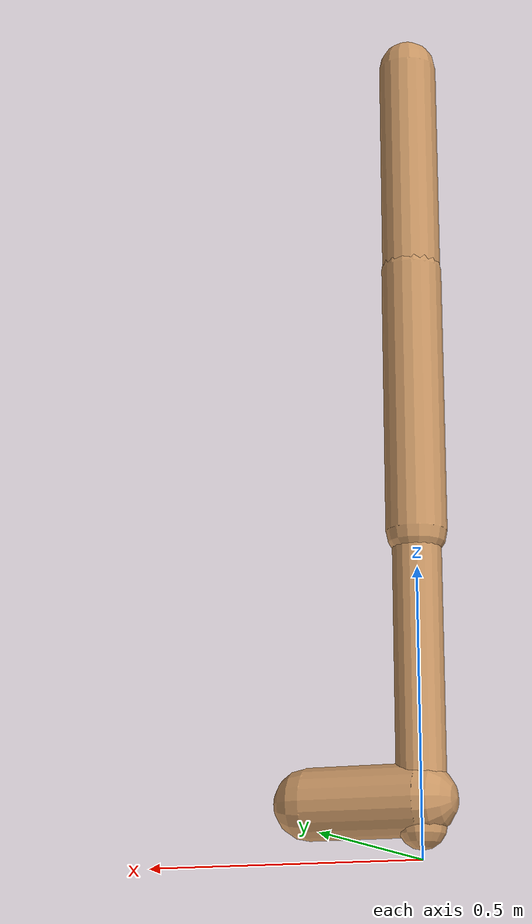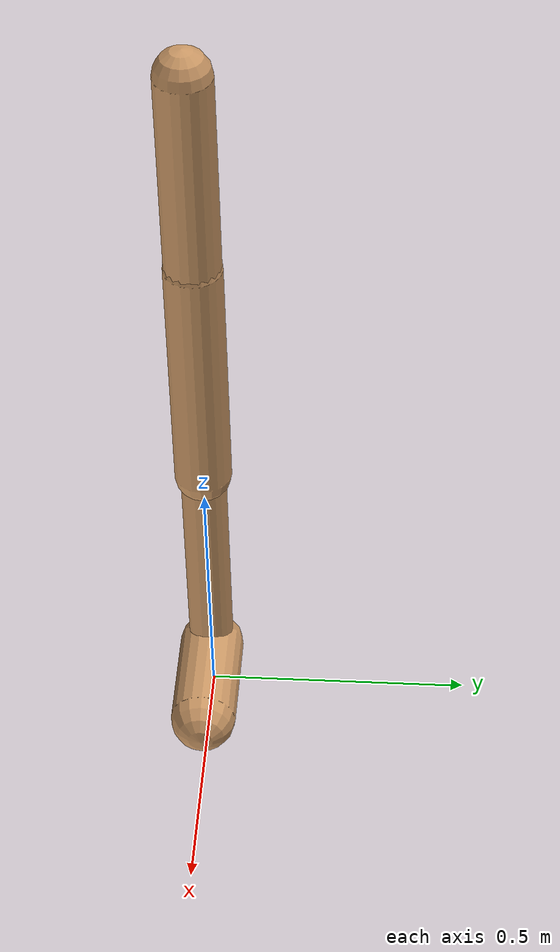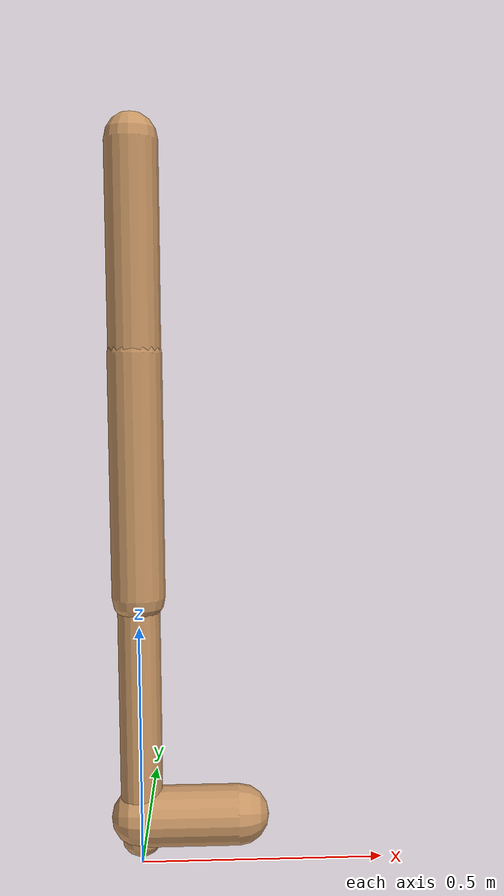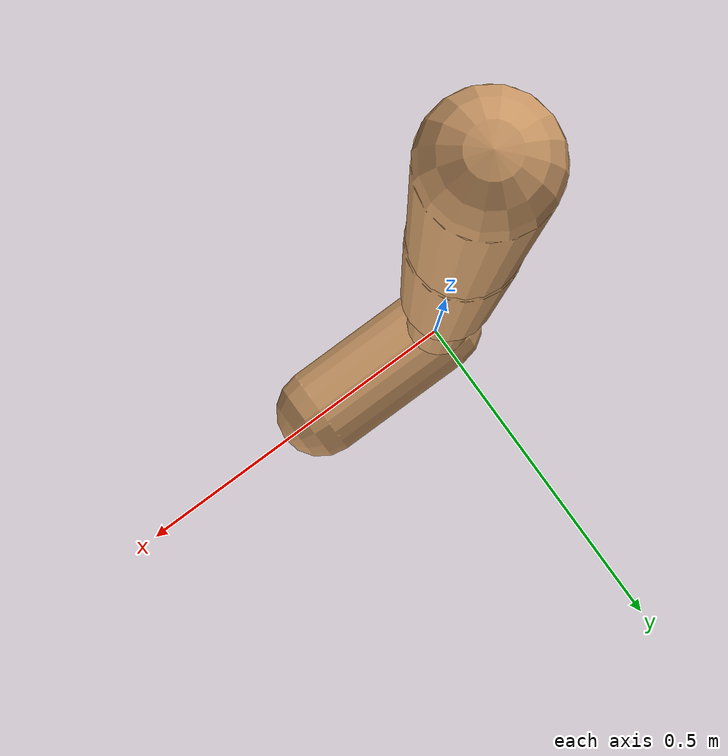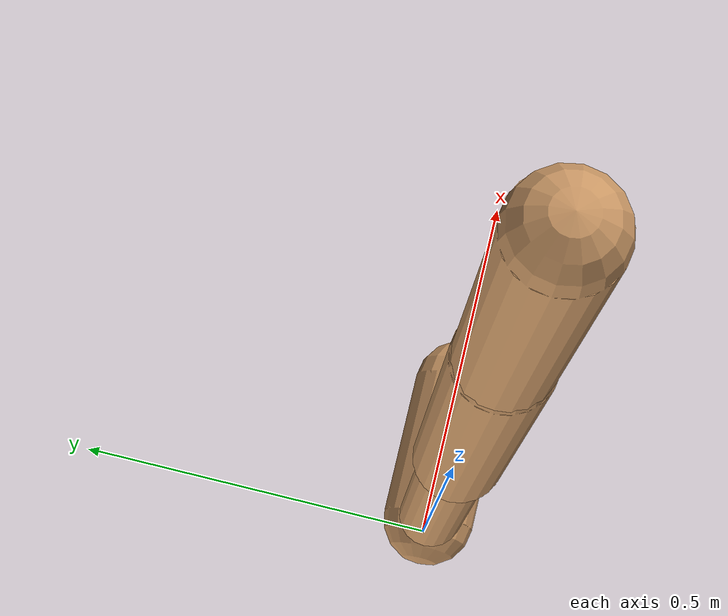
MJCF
<mujoco model="walker2d">
  <compiler angle="degree" coordinate="global" inertiafromgeom="true" />
  <default>
    <joint armature="0.01" damping=".1" limited="true" />
    <geom conaffinity="0" condim="3" contype="1" density="1000" friction="0.8 .1 .1" rgba="0.8 0.6 .4 1" />
  </default>
  <option integrator="RK4" timestep="0.002" />
  <worldbody>

    <body name="torso" pos="0 0 0.07730940486166814">
      <joint armature="0" axis="1 0 0" damping="0" limited="false" name="ignorex" pos="0 0 0" stiffness="0" type="slide" />
      <joint armature="0" axis="0 0 1" damping="0" limited="false" name="ignorez" pos="0 0 0" ref="1.25" stiffness="0" type="slide" />
      <joint armature="0" axis="0 1 0" damping="0" limited="false" name="ignorey" pos="0 0 0" stiffness="0" type="hinge" />
      <geom fromto="0 0 1.45 0 0 1.05" name="torso_geom" size="0.05194785101209931" type="capsule" />
      <body name="thigh">
        <joint axis="0 -1 0" name="thigh_joint" pos="0 0 1.05" range="-150 0" type="hinge" />
        <geom fromto="0.0 0.0 1.05 0.0 0.0 0.5633797555918414" name="thigh_geom" size="0.05367977589542991" type="capsule" />
        <body name="leg" pos="0.0 0.0 -0.036620244408158587">
          <joint axis="0 -1 0" name="leg_joint" pos="0 0 0.6" range="-150 0" type="hinge" />
          <geom fromto="0.0 0.0 0.6 0.0 0.0 0.05931083954649046" name="leg_geom" size="0.04294382071634392" type="capsule" />
          <body name="foot" pos="0.0 0.0 -0.040689160453509544">
            <joint axis="0 -1 0" name="foot_joint" pos="0 0 0.1" range="-45 45" type="hinge" />
            <geom fromto="-0.0 0.0 0.1 0.20025846737434977 0.0 0.1" name="foot_geom" size="0.06231284271275808" type="capsule" />
          </body>
        </body>
      </body>

      <body name="thigh_left">
        <joint axis="0 -1 0" name="thigh_left_joint" pos="0 0 1.05" range="-150 0" type="hinge" />
        <geom fromto="0.0 0.0 1.05 0.0 0.0 0.5633797555918414" name="thigh_left_geom" rgba=".7 .3 .6 1" size="0.05367977589542991" type="capsule" />
        <body name="leg_left" pos="0.0 0.0 -0.036620244408158587">
          <joint axis="0 -1 0" name="leg_left_joint" pos="0 0 0.6" range="-150 0" type="hinge" />
          <geom fromto="0.0 0.0 0.6 0.0 0.0 0.05931083954649046" name="leg_left_geom" rgba=".7 .3 .6 1" size="0.04294382071634392" type="capsule" />
          <body name="foot_left" pos="0.0 0.0 -0.040689160453509544">
            <joint axis="0 -1 0" name="foot_left_joint" pos="0 0 0.1" range="-45 45" type="hinge" />
            <geom fromto="-0.0 0.0 0.1 0.20025846737434977 0.0 0.1" name="foot_left_geom" rgba=".7 .3 .6 1" size="0.06231284271275808" type="capsule" />
          </body>
        </body>
      </body>
    </body>
  </worldbody>
  <actuator>

    <motor ctrllimited="true" ctrlrange="-1.0 1.0" gear="100" joint="thigh_joint" />
    <motor ctrllimited="true" ctrlrange="-1.0 1.0" gear="100" joint="leg_joint" />
    <motor ctrllimited="true" ctrlrange="-1.0 1.0" gear="100" joint="foot_joint" />
    <motor ctrllimited="true" ctrlrange="-1.0 1.0" gear="100" joint="thigh_left_joint" />
    <motor ctrllimited="true" ctrlrange="-1.0 1.0" gear="100" joint="leg_left_joint" />
    <motor ctrllimited="true" ctrlrange="-1.0 1.0" gear="100" joint="foot_left_joint" />

  </actuator>
</mujoco>
